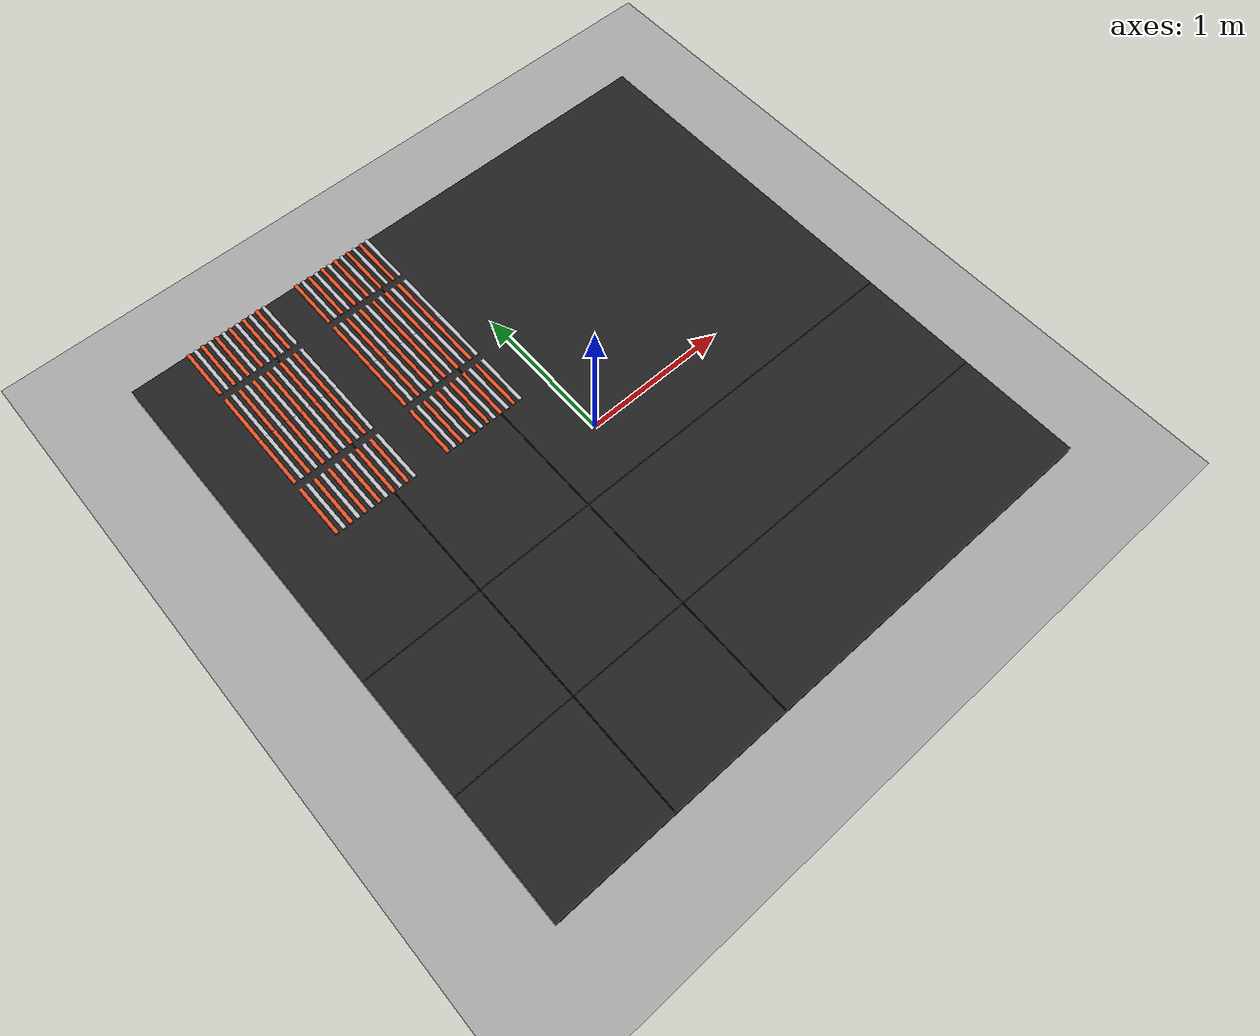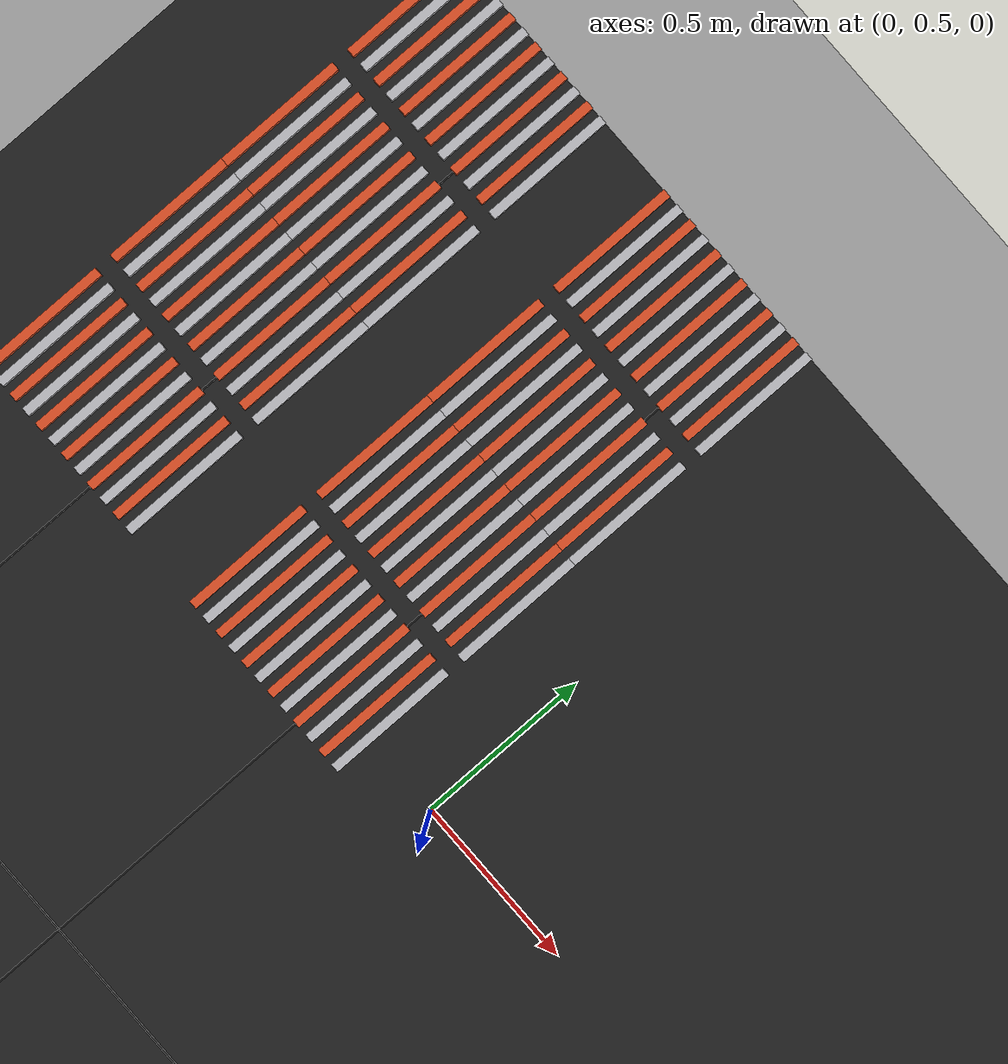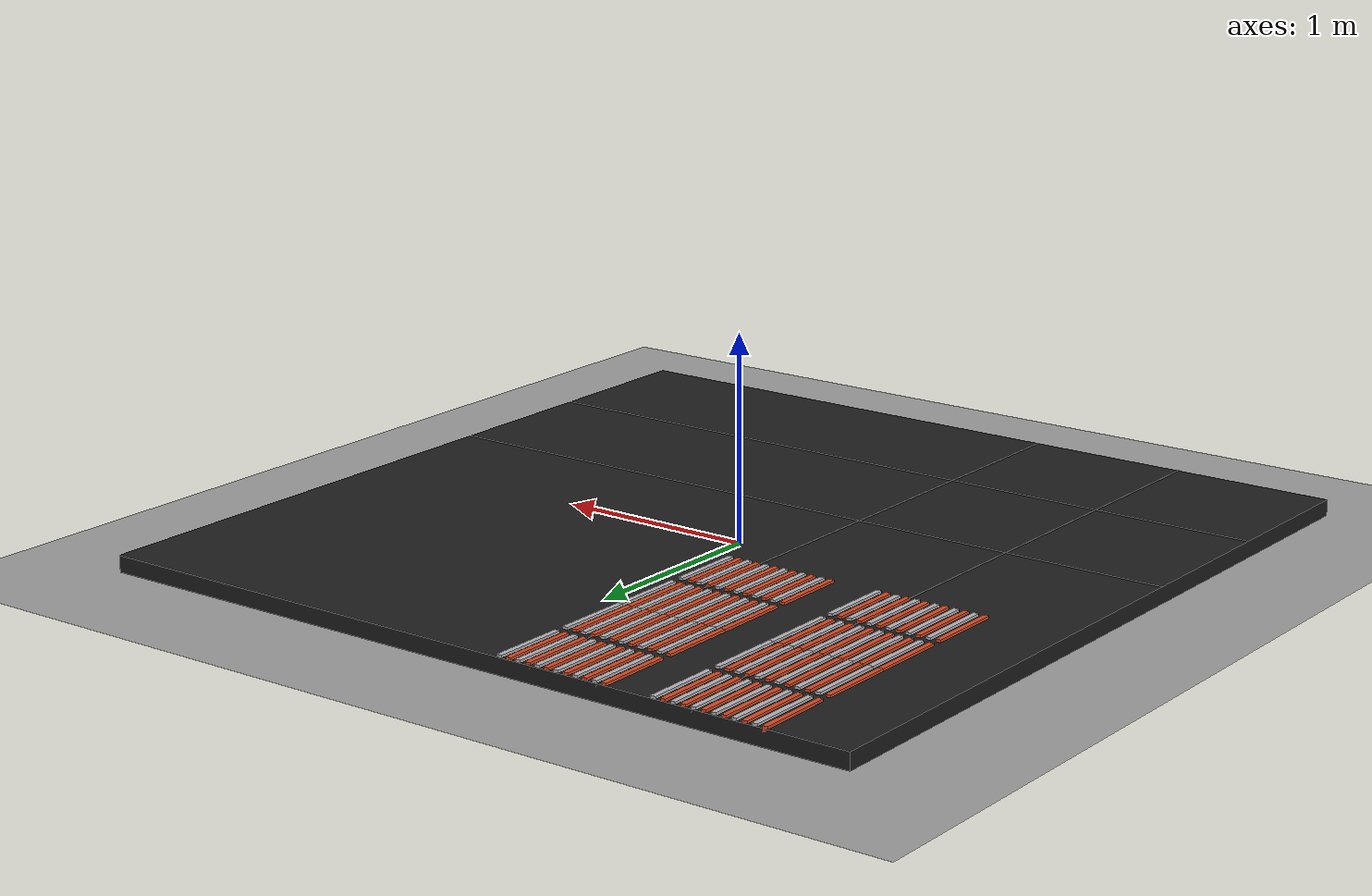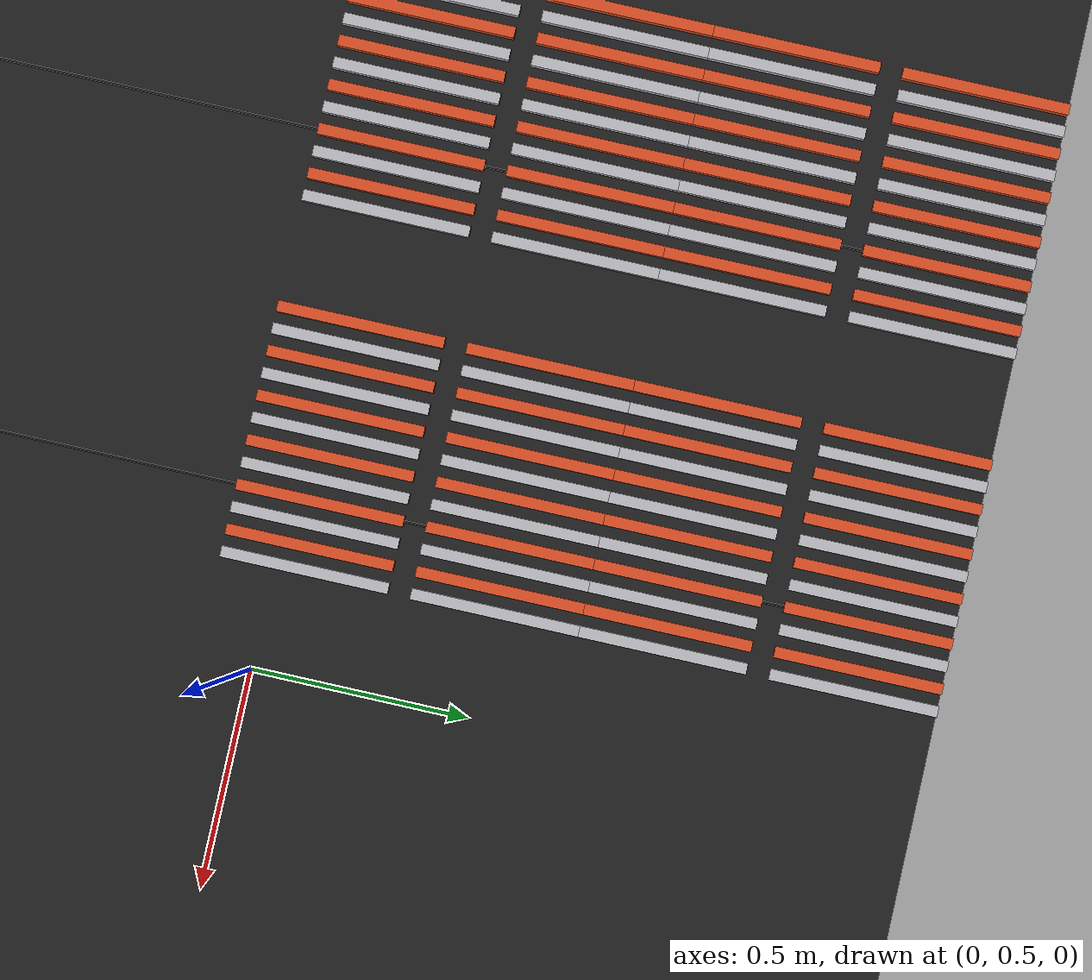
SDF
<sdf version="1.9">
 <world name="electrolysis_correct_layout">
  <model name="ground_plane">
   <static>true</static>
   <link name="link">
    <collision name="collision">
     <geometry><plane><normal>0 0 1</normal><size>20 20</size></plane></geometry>
    </collision>
    <visual name="visual">
     <geometry><plane><normal>0 0 1</normal><size>20 20</size></plane></geometry>
     <material><ambient>0.62 0.62 0.62 1</ambient><diffuse>0.62 0.62 0.62 1</diffuse></material>
    </visual>
   </link>
  </model>
  <model name="polygon_platform">
   <static>true</static>
   <pose>0.0000 0.0000 0.0400 0 0 0</pose>
   <link name="link">
    <collision name="collision"><geometry><box><size>4.0000 4.0000 0.0800</size></box></geometry></collision>
    <visual name="visual">
     <geometry><box><size>4.0000 4.0000 0.0800</size></box></geometry>
     <material><ambient>0.12 0.12 0.12 1</ambient><diffuse>0.12 0.12 0.12 1</diffuse></material>
    </visual>
   </link>
  </model>
  <model name="grid_vertical_1">
   <static>true</static>
   <pose>-1.2000 0.0000 0.0810 0 0 0</pose>
   <link name="link">
    <collision name="collision"><geometry><box><size>0.0060 4.0000 0.0020</size></box></geometry></collision>
    <visual name="visual">
     <geometry><box><size>0.0060 4.0000 0.0020</size></box></geometry>
     <material><ambient>0.07 0.07 0.07 1</ambient><diffuse>0.07 0.07 0.07 1</diffuse></material>
    </visual>
   </link>
  </model>
  <model name="grid_horizontal_1">
   <static>true</static>
   <pose>0.0000 -1.2000 0.0810 0 0 0</pose>
   <link name="link">
    <collision name="collision"><geometry><box><size>4.0000 0.0060 0.0020</size></box></geometry></collision>
    <visual name="visual">
     <geometry><box><size>4.0000 0.0060 0.0020</size></box></geometry>
     <material><ambient>0.07 0.07 0.07 1</ambient><diffuse>0.07 0.07 0.07 1</diffuse></material>
    </visual>
   </link>
  </model>
  <model name="grid_vertical_2">
   <static>true</static>
   <pose>-0.4000 0.0000 0.0810 0 0 0</pose>
   <link name="link">
    <collision name="collision"><geometry><box><size>0.0060 4.0000 0.0020</size></box></geometry></collision>
    <visual name="visual">
     <geometry><box><size>0.0060 4.0000 0.0020</size></box></geometry>
     <material><ambient>0.07 0.07 0.07 1</ambient><diffuse>0.07 0.07 0.07 1</diffuse></material>
    </visual>
   </link>
  </model>
  <model name="grid_horizontal_2">
   <static>true</static>
   <pose>0.0000 -0.4000 0.0810 0 0 0</pose>
   <link name="link">
    <collision name="collision"><geometry><box><size>4.0000 0.0060 0.0020</size></box></geometry></collision>
    <visual name="visual">
     <geometry><box><size>4.0000 0.0060 0.0020</size></box></geometry>
     <material><ambient>0.07 0.07 0.07 1</ambient><diffuse>0.07 0.07 0.07 1</diffuse></material>
    </visual>
   </link>
  </model>
  <model name="left_bath_01_anode_01">
   <static>true</static>
   <pose>-1.6000 0.5875 0.0800 0 0 0</pose>
   <link name="link">
    <collision name="collision"><geometry><box><size>0.0250 0.3750 0.0250</size></box></geometry></collision>
    <visual name="visual">
     <geometry><box><size>0.0250 0.3750 0.0250</size></box></geometry>
     <material><ambient>0.85 0.30 0.14 1</ambient><diffuse>0.85 0.30 0.14 1</diffuse></material>
    </visual>
   </link>
  </model>
  <model name="left_bath_01_cathode_02">
   <static>true</static>
   <pose>-1.5500 0.5875 0.0800 0 0 0</pose>
   <link name="link">
    <collision name="collision"><geometry><box><size>0.0250 0.3750 0.0250</size></box></geometry></collision>
    <visual name="visual">
     <geometry><box><size>0.0250 0.3750 0.0250</size></box></geometry>
     <material><ambient>0.72 0.72 0.74 1</ambient><diffuse>0.72 0.72 0.74 1</diffuse></material>
    </visual>
   </link>
  </model>
  <model name="left_bath_01_anode_03">
   <static>true</static>
   <pose>-1.5000 0.5875 0.0800 0 0 0</pose>
   <link name="link">
    <collision name="collision"><geometry><box><size>0.0250 0.3750 0.0250</size></box></geometry></collision>
    <visual name="visual">
     <geometry><box><size>0.0250 0.3750 0.0250</size></box></geometry>
     <material><ambient>0.85 0.30 0.14 1</ambient><diffuse>0.85 0.30 0.14 1</diffuse></material>
    </visual>
   </link>
  </model>
  <model name="left_bath_01_cathode_04">
   <static>true</static>
   <pose>-1.4500 0.5875 0.0800 0 0 0</pose>
   <link name="link">
    <collision name="collision"><geometry><box><size>0.0250 0.3750 0.0250</size></box></geometry></collision>
    <visual name="visual">
     <geometry><box><size>0.0250 0.3750 0.0250</size></box></geometry>
     <material><ambient>0.72 0.72 0.74 1</ambient><diffuse>0.72 0.72 0.74 1</diffuse></material>
    </visual>
   </link>
  </model>
  <model name="left_bath_01_anode_05">
   <static>true</static>
   <pose>-1.4000 0.5875 0.0800 0 0 0</pose>
   <link name="link">
    <collision name="collision"><geometry><box><size>0.0250 0.3750 0.0250</size></box></geometry></collision>
    <visual name="visual">
     <geometry><box><size>0.0250 0.3750 0.0250</size></box></geometry>
     <material><ambient>0.85 0.30 0.14 1</ambient><diffuse>0.85 0.30 0.14 1</diffuse></material>
    </visual>
   </link>
  </model>
  <model name="left_bath_01_cathode_06">
   <static>true</static>
   <pose>-1.3500 0.5875 0.0800 0 0 0</pose>
   <link name="link">
    <collision name="collision"><geometry><box><size>0.0250 0.3750 0.0250</size></box></geometry></collision>
    <visual name="visual">
     <geometry><box><size>0.0250 0.3750 0.0250</size></box></geometry>
     <material><ambient>0.72 0.72 0.74 1</ambient><diffuse>0.72 0.72 0.74 1</diffuse></material>
    </visual>
   </link>
  </model>
  <model name="left_bath_01_anode_07">
   <static>true</static>
   <pose>-1.3000 0.5875 0.0800 0 0 0</pose>
   <link name="link">
    <collision name="collision"><geometry><box><size>0.0250 0.3750 0.0250</size></box></geometry></collision>
    <visual name="visual">
     <geometry><box><size>0.0250 0.3750 0.0250</size></box></geometry>
     <material><ambient>0.85 0.30 0.14 1</ambient><diffuse>0.85 0.30 0.14 1</diffuse></material>
    </visual>
   </link>
  </model>
  <model name="left_bath_01_cathode_08">
   <static>true</static>
   <pose>-1.2500 0.5875 0.0800 0 0 0</pose>
   <link name="link">
    <collision name="collision"><geometry><box><size>0.0250 0.3750 0.0250</size></box></geometry></collision>
    <visual name="visual">
     <geometry><box><size>0.0250 0.3750 0.0250</size></box></geometry>
     <material><ambient>0.72 0.72 0.74 1</ambient><diffuse>0.72 0.72 0.74 1</diffuse></material>
    </visual>
   </link>
  </model>
  <model name="left_bath_01_anode_09">
   <static>true</static>
   <pose>-1.2000 0.5875 0.0800 0 0 0</pose>
   <link name="link">
    <collision name="collision"><geometry><box><size>0.0250 0.3750 0.0250</size></box></geometry></collision>
    <visual name="visual">
     <geometry><box><size>0.0250 0.3750 0.0250</size></box></geometry>
     <material><ambient>0.85 0.30 0.14 1</ambient><diffuse>0.85 0.30 0.14 1</diffuse></material>
    </visual>
   </link>
  </model>
  <model name="left_bath_01_cathode_10">
   <static>true</static>
   <pose>-1.1500 0.5875 0.0800 0 0 0</pose>
   <link name="link">
    <collision name="collision"><geometry><box><size>0.0250 0.3750 0.0250</size></box></geometry></collision>
    <visual name="visual">
     <geometry><box><size>0.0250 0.3750 0.0250</size></box></geometry>
     <material><ambient>0.72 0.72 0.74 1</ambient><diffuse>0.72 0.72 0.74 1</diffuse></material>
    </visual>
   </link>
  </model>
  <model name="left_bath_01_anode_11">
   <static>true</static>
   <pose>-1.1000 0.5875 0.0800 0 0 0</pose>
   <link name="link">
    <collision name="collision"><geometry><box><size>0.0250 0.3750 0.0250</size></box></geometry></collision>
    <visual name="visual">
     <geometry><box><size>0.0250 0.3750 0.0250</size></box></geometry>
     <material><ambient>0.85 0.30 0.14 1</ambient><diffuse>0.85 0.30 0.14 1</diffuse></material>
    </visual>
   </link>
  </model>
  <model name="left_bath_01_cathode_12">
   <static>true</static>
   <pose>-1.0500 0.5875 0.0800 0 0 0</pose>
   <link name="link">
    <collision name="collision"><geometry><box><size>0.0250 0.3750 0.0250</size></box></geometry></collision>
    <visual name="visual">
     <geometry><box><size>0.0250 0.3750 0.0250</size></box></geometry>
     <material><ambient>0.72 0.72 0.74 1</ambient><diffuse>0.72 0.72 0.74 1</diffuse></material>
    </visual>
   </link>
  </model>
  <model name="left_bath_02_anode_01">
   <static>true</static>
   <pose>-1.6000 1.0125 0.0800 0 0 0</pose>
   <link name="link">
    <collision name="collision"><geometry><box><size>0.0250 0.3750 0.0250</size></box></geometry></collision>
    <visual name="visual">
     <geometry><box><size>0.0250 0.3750 0.0250</size></box></geometry>
     <material><ambient>0.85 0.30 0.14 1</ambient><diffuse>0.85 0.30 0.14 1</diffuse></material>
    </visual>
   </link>
  </model>
  <model name="left_bath_02_cathode_02">
   <static>true</static>
   <pose>-1.5500 1.0125 0.0800 0 0 0</pose>
   <link name="link">
    <collision name="collision"><geometry><box><size>0.0250 0.3750 0.0250</size></box></geometry></collision>
    <visual name="visual">
     <geometry><box><size>0.0250 0.3750 0.0250</size></box></geometry>
     <material><ambient>0.72 0.72 0.74 1</ambient><diffuse>0.72 0.72 0.74 1</diffuse></material>
    </visual>
   </link>
  </model>
  <model name="left_bath_02_anode_03">
   <static>true</static>
   <pose>-1.5000 1.0125 0.0800 0 0 0</pose>
   <link name="link">
    <collision name="collision"><geometry><box><size>0.0250 0.3750 0.0250</size></box></geometry></collision>
    <visual name="visual">
     <geometry><box><size>0.0250 0.3750 0.0250</size></box></geometry>
     <material><ambient>0.85 0.30 0.14 1</ambient><diffuse>0.85 0.30 0.14 1</diffuse></material>
    </visual>
   </link>
  </model>
  <model name="left_bath_02_cathode_04">
   <static>true</static>
   <pose>-1.4500 1.0125 0.0800 0 0 0</pose>
   <link name="link">
    <collision name="collision"><geometry><box><size>0.0250 0.3750 0.0250</size></box></geometry></collision>
    <visual name="visual">
     <geometry><box><size>0.0250 0.3750 0.0250</size></box></geometry>
     <material><ambient>0.72 0.72 0.74 1</ambient><diffuse>0.72 0.72 0.74 1</diffuse></material>
    </visual>
   </link>
  </model>
  <model name="left_bath_02_anode_05">
   <static>true</static>
   <pose>-1.4000 1.0125 0.0800 0 0 0</pose>
   <link name="link">
    <collision name="collision"><geometry><box><size>0.0250 0.3750 0.0250</size></box></geometry></collision>
    <visual name="visual">
     <geometry><box><size>0.0250 0.3750 0.0250</size></box></geometry>
     <material><ambient>0.85 0.30 0.14 1</ambient><diffuse>0.85 0.30 0.14 1</diffuse></material>
    </visual>
   </link>
  </model>
  <model name="left_bath_02_cathode_06">
   <static>true</static>
   <pose>-1.3500 1.0125 0.0800 0 0 0</pose>
   <link name="link">
    <collision name="collision"><geometry><box><size>0.0250 0.3750 0.0250</size></box></geometry></collision>
    <visual name="visual">
     <geometry><box><size>0.0250 0.3750 0.0250</size></box></geometry>
     <material><ambient>0.72 0.72 0.74 1</ambient><diffuse>0.72 0.72 0.74 1</diffuse></material>
    </visual>
   </link>
  </model>
  <model name="left_bath_02_anode_07">
   <static>true</static>
   <pose>-1.3000 1.0125 0.0800 0 0 0</pose>
   <link name="link">
    <collision name="collision"><geometry><box><size>0.0250 0.3750 0.0250</size></box></geometry></collision>
    <visual name="visual">
     <geometry><box><size>0.0250 0.3750 0.0250</size></box></geometry>
     <material><ambient>0.85 0.30 0.14 1</ambient><diffuse>0.85 0.30 0.14 1</diffuse></material>
    </visual>
   </link>
  </model>
  <model name="left_bath_02_cathode_08">
   <static>true</static>
   <pose>-1.2500 1.0125 0.0800 0 0 0</pose>
   <link name="link">
    <collision name="collision"><geometry><box><size>0.0250 0.3750 0.0250</size></box></geometry></collision>
    <visual name="visual">
     <geometry><box><size>0.0250 0.3750 0.0250</size></box></geometry>
     <material><ambient>0.72 0.72 0.74 1</ambient><diffuse>0.72 0.72 0.74 1</diffuse></material>
    </visual>
   </link>
  </model>
  <model name="left_bath_02_anode_09">
   <static>true</static>
   <pose>-1.2000 1.0125 0.0800 0 0 0</pose>
   <link name="link">
    <collision name="collision"><geometry><box><size>0.0250 0.3750 0.0250</size></box></geometry></collision>
    <visual name="visual">
     <geometry><box><size>0.0250 0.3750 0.0250</size></box></geometry>
     <material><ambient>0.85 0.30 0.14 1</ambient><diffuse>0.85 0.30 0.14 1</diffuse></material>
    </visual>
   </link>
  </model>
  <model name="left_bath_02_cathode_10">
   <static>true</static>
   <pose>-1.1500 1.0125 0.0800 0 0 0</pose>
   <link name="link">
    <collision name="collision"><geometry><box><size>0.0250 0.3750 0.0250</size></box></geometry></collision>
    <visual name="visual">
     <geometry><box><size>0.0250 0.3750 0.0250</size></box></geometry>
     <material><ambient>0.72 0.72 0.74 1</ambient><diffuse>0.72 0.72 0.74 1</diffuse></material>
    </visual>
   </link>
  </model>
  <model name="left_bath_02_anode_11">
   <static>true</static>
   <pose>-1.1000 1.0125 0.0800 0 0 0</pose>
   <link name="link">
    <collision name="collision"><geometry><box><size>0.0250 0.3750 0.0250</size></box></geometry></collision>
    <visual name="visual">
     <geometry><box><size>0.0250 0.3750 0.0250</size></box></geometry>
     <material><ambient>0.85 0.30 0.14 1</ambient><diffuse>0.85 0.30 0.14 1</diffuse></material>
    </visual>
   </link>
  </model>
  <model name="left_bath_02_cathode_12">
   <static>true</static>
   <pose>-1.0500 1.0125 0.0800 0 0 0</pose>
   <link name="link">
    <collision name="collision"><geometry><box><size>0.0250 0.3750 0.0250</size></box></geometry></collision>
    <visual name="visual">
     <geometry><box><size>0.0250 0.3750 0.0250</size></box></geometry>
     <material><ambient>0.72 0.72 0.74 1</ambient><diffuse>0.72 0.72 0.74 1</diffuse></material>
    </visual>
   </link>
  </model>
  <model name="left_bath_03_anode_01">
   <static>true</static>
   <pose>-0.8000 0.5875 0.0800 0 0 0</pose>
   <link name="link">
    <collision name="collision"><geometry><box><size>0.0250 0.3750 0.0250</size></box></geometry></collision>
    <visual name="visual">
     <geometry><box><size>0.0250 0.3750 0.0250</size></box></geometry>
     <material><ambient>0.85 0.30 0.14 1</ambient><diffuse>0.85 0.30 0.14 1</diffuse></material>
    </visual>
   </link>
  </model>
  <model name="left_bath_03_cathode_02">
   <static>true</static>
   <pose>-0.7500 0.5875 0.0800 0 0 0</pose>
   <link name="link">
    <collision name="collision"><geometry><box><size>0.0250 0.3750 0.0250</size></box></geometry></collision>
    <visual name="visual">
     <geometry><box><size>0.0250 0.3750 0.0250</size></box></geometry>
     <material><ambient>0.72 0.72 0.74 1</ambient><diffuse>0.72 0.72 0.74 1</diffuse></material>
    </visual>
   </link>
  </model>
  <model name="left_bath_03_anode_03">
   <static>true</static>
   <pose>-0.7000 0.5875 0.0800 0 0 0</pose>
   <link name="link">
    <collision name="collision"><geometry><box><size>0.0250 0.3750 0.0250</size></box></geometry></collision>
    <visual name="visual">
     <geometry><box><size>0.0250 0.3750 0.0250</size></box></geometry>
     <material><ambient>0.85 0.30 0.14 1</ambient><diffuse>0.85 0.30 0.14 1</diffuse></material>
    </visual>
   </link>
  </model>
  <model name="left_bath_03_cathode_04">
   <static>true</static>
   <pose>-0.6500 0.5875 0.0800 0 0 0</pose>
   <link name="link">
    <collision name="collision"><geometry><box><size>0.0250 0.3750 0.0250</size></box></geometry></collision>
    <visual name="visual">
     <geometry><box><size>0.0250 0.3750 0.0250</size></box></geometry>
     <material><ambient>0.72 0.72 0.74 1</ambient><diffuse>0.72 0.72 0.74 1</diffuse></material>
    </visual>
   </link>
  </model>
  <model name="left_bath_03_anode_05">
   <static>true</static>
   <pose>-0.6000 0.5875 0.0800 0 0 0</pose>
   <link name="link">
    <collision name="collision"><geometry><box><size>0.0250 0.3750 0.0250</size></box></geometry></collision>
    <visual name="visual">
     <geometry><box><size>0.0250 0.3750 0.0250</size></box></geometry>
     <material><ambient>0.85 0.30 0.14 1</ambient><diffuse>0.85 0.30 0.14 1</diffuse></material>
    </visual>
   </link>
  </model>
  <model name="left_bath_03_cathode_06">
   <static>true</static>
   <pose>-0.5500 0.5875 0.0800 0 0 0</pose>
   <link name="link">
    <collision name="collision"><geometry><box><size>0.0250 0.3750 0.0250</size></box></geometry></collision>
    <visual name="visual">
     <geometry><box><size>0.0250 0.3750 0.0250</size></box></geometry>
     <material><ambient>0.72 0.72 0.74 1</ambient><diffuse>0.72 0.72 0.74 1</diffuse></material>
    </visual>
   </link>
  </model>
  <model name="left_bath_03_anode_07">
   <static>true</static>
   <pose>-0.5000 0.5875 0.0800 0 0 0</pose>
   <link name="link">
    <collision name="collision"><geometry><box><size>0.0250 0.3750 0.0250</size></box></geometry></collision>
    <visual name="visual">
     <geometry><box><size>0.0250 0.3750 0.0250</size></box></geometry>
     <material><ambient>0.85 0.30 0.14 1</ambient><diffuse>0.85 0.30 0.14 1</diffuse></material>
    </visual>
   </link>
  </model>
  <model name="left_bath_03_cathode_08">
   <static>true</static>
   <pose>-0.4500 0.5875 0.0800 0 0 0</pose>
   <link name="link">
    <collision name="collision"><geometry><box><size>0.0250 0.3750 0.0250</size></box></geometry></collision>
    <visual name="visual">
     <geometry><box><size>0.0250 0.3750 0.0250</size></box></geometry>
     <material><ambient>0.72 0.72 0.74 1</ambient><diffuse>0.72 0.72 0.74 1</diffuse></material>
    </visual>
   </link>
  </model>
  <model name="left_bath_03_anode_09">
   <static>true</static>
   <pose>-0.4000 0.5875 0.0800 0 0 0</pose>
   <link name="link">
    <collision name="collision"><geometry><box><size>0.0250 0.3750 0.0250</size></box></geometry></collision>
    <visual name="visual">
     <geometry><box><size>0.0250 0.3750 0.0250</size></box></geometry>
     <material><ambient>0.85 0.30 0.14 1</ambient><diffuse>0.85 0.30 0.14 1</diffuse></material>
    </visual>
   </link>
  </model>
  <model name="left_bath_03_cathode_10">
   <static>true</static>
   <pose>-0.3500 0.5875 0.0800 0 0 0</pose>
   <link name="link">
    <collision name="collision"><geometry><box><size>0.0250 0.3750 0.0250</size></box></geometry></collision>
    <visual name="visual">
     <geometry><box><size>0.0250 0.3750 0.0250</size></box></geometry>
     <material><ambient>0.72 0.72 0.74 1</ambient><diffuse>0.72 0.72 0.74 1</diffuse></material>
    </visual>
   </link>
  </model>
  <model name="left_bath_03_anode_11">
   <static>true</static>
   <pose>-0.3000 0.5875 0.0800 0 0 0</pose>
   <link name="link">
    <collision name="collision"><geometry><box><size>0.0250 0.3750 0.0250</size></box></geometry></collision>
    <visual name="visual">
     <geometry><box><size>0.0250 0.3750 0.0250</size></box></geometry>
     <material><ambient>0.85 0.30 0.14 1</ambient><diffuse>0.85 0.30 0.14 1</diffuse></material>
    </visual>
   </link>
  </model>
  <model name="left_bath_03_cathode_12">
   <static>true</static>
   <pose>-0.2500 0.5875 0.0800 0 0 0</pose>
   <link name="link">
    <collision name="collision"><geometry><box><size>0.0250 0.3750 0.0250</size></box></geometry></collision>
    <visual name="visual">
     <geometry><box><size>0.0250 0.3750 0.0250</size></box></geometry>
     <material><ambient>0.72 0.72 0.74 1</ambient><diffuse>0.72 0.72 0.74 1</diffuse></material>
    </visual>
   </link>
  </model>
  <model name="left_bath_04_anode_01">
   <static>true</static>
   <pose>-0.8000 1.0125 0.0800 0 0 0</pose>
   <link name="link">
    <collision name="collision"><geometry><box><size>0.0250 0.3750 0.0250</size></box></geometry></collision>
    <visual name="visual">
     <geometry><box><size>0.0250 0.3750 0.0250</size></box></geometry>
     <material><ambient>0.85 0.30 0.14 1</ambient><diffuse>0.85 0.30 0.14 1</diffuse></material>
    </visual>
   </link>
  </model>
  <model name="left_bath_04_cathode_02">
   <static>true</static>
   <pose>-0.7500 1.0125 0.0800 0 0 0</pose>
   <link name="link">
    <collision name="collision"><geometry><box><size>0.0250 0.3750 0.0250</size></box></geometry></collision>
    <visual name="visual">
     <geometry><box><size>0.0250 0.3750 0.0250</size></box></geometry>
     <material><ambient>0.72 0.72 0.74 1</ambient><diffuse>0.72 0.72 0.74 1</diffuse></material>
    </visual>
   </link>
  </model>
  <model name="left_bath_04_anode_03">
   <static>true</static>
   <pose>-0.7000 1.0125 0.0800 0 0 0</pose>
   <link name="link">
    <collision name="collision"><geometry><box><size>0.0250 0.3750 0.0250</size></box></geometry></collision>
    <visual name="visual">
     <geometry><box><size>0.0250 0.3750 0.0250</size></box></geometry>
     <material><ambient>0.85 0.30 0.14 1</ambient><diffuse>0.85 0.30 0.14 1</diffuse></material>
    </visual>
   </link>
  </model>
  <model name="left_bath_04_cathode_04">
   <static>true</static>
   <pose>-0.6500 1.0125 0.0800 0 0 0</pose>
   <link name="link">
    <collision name="collision"><geometry><box><size>0.0250 0.3750 0.0250</size></box></geometry></collision>
    <visual name="visual">
     <geometry><box><size>0.0250 0.3750 0.0250</size></box></geometry>
     <material><ambient>0.72 0.72 0.74 1</ambient><diffuse>0.72 0.72 0.74 1</diffuse></material>
    </visual>
   </link>
  </model>
  <model name="left_bath_04_anode_05">
   <static>true</static>
   <pose>-0.6000 1.0125 0.0800 0 0 0</pose>
   <link name="link">
    <collision name="collision"><geometry><box><size>0.0250 0.3750 0.0250</size></box></geometry></collision>
    <visual name="visual">
     <geometry><box><size>0.0250 0.3750 0.0250</size></box></geometry>
     <material><ambient>0.85 0.30 0.14 1</ambient><diffuse>0.85 0.30 0.14 1</diffuse></material>
    </visual>
   </link>
  </model>
  <model name="left_bath_04_cathode_06">
   <static>true</static>
   <pose>-0.5500 1.0125 0.0800 0 0 0</pose>
   <link name="link">
    <collision name="collision"><geometry><box><size>0.0250 0.3750 0.0250</size></box></geometry></collision>
    <visual name="visual">
     <geometry><box><size>0.0250 0.3750 0.0250</size></box></geometry>
     <material><ambient>0.72 0.72 0.74 1</ambient><diffuse>0.72 0.72 0.74 1</diffuse></material>
    </visual>
   </link>
  </model>
  <model name="left_bath_04_anode_07">
   <static>true</static>
   <pose>-0.5000 1.0125 0.0800 0 0 0</pose>
   <link name="link">
    <collision name="collision"><geometry><box><size>0.0250 0.3750 0.0250</size></box></geometry></collision>
    <visual name="visual">
     <geometry><box><size>0.0250 0.3750 0.0250</size></box></geometry>
     <material><ambient>0.85 0.30 0.14 1</ambient><diffuse>0.85 0.30 0.14 1</diffuse></material>
    </visual>
   </link>
  </model>
  <model name="left_bath_04_cathode_08">
   <static>true</static>
   <pose>-0.4500 1.0125 0.0800 0 0 0</pose>
   <link name="link">
    <collision name="collision"><geometry><box><size>0.0250 0.3750 0.0250</size></box></geometry></collision>
    <visual name="visual">
     <geometry><box><size>0.0250 0.3750 0.0250</size></box></geometry>
     <material><ambient>0.72 0.72 0.74 1</ambient><diffuse>0.72 0.72 0.74 1</diffuse></material>
    </visual>
   </link>
  </model>
  <model name="left_bath_04_anode_09">
   <static>true</static>
   <pose>-0.4000 1.0125 0.0800 0 0 0</pose>
   <link name="link">
    <collision name="collision"><geometry><box><size>0.0250 0.3750 0.0250</size></box></geometry></collision>
    <visual name="visual">
     <geometry><box><size>0.0250 0.3750 0.0250</size></box></geometry>
     <material><ambient>0.85 0.30 0.14 1</ambient><diffuse>0.85 0.30 0.14 1</diffuse></material>
    </visual>
   </link>
  </model>
  <model name="left_bath_04_cathode_10">
   <static>true</static>
   <pose>-0.3500 1.0125 0.0800 0 0 0</pose>
   <link name="link">
    <collision name="collision"><geometry><box><size>0.0250 0.3750 0.0250</size></box></geometry></collision>
    <visual name="visual">
     <geometry><box><size>0.0250 0.3750 0.0250</size></box></geometry>
     <material><ambient>0.72 0.72 0.74 1</ambient><diffuse>0.72 0.72 0.74 1</diffuse></material>
    </visual>
   </link>
  </model>
  <model name="left_bath_04_anode_11">
   <static>true</static>
   <pose>-0.3000 1.0125 0.0800 0 0 0</pose>
   <link name="link">
    <collision name="collision"><geometry><box><size>0.0250 0.3750 0.0250</size></box></geometry></collision>
    <visual name="visual">
     <geometry><box><size>0.0250 0.3750 0.0250</size></box></geometry>
     <material><ambient>0.85 0.30 0.14 1</ambient><diffuse>0.85 0.30 0.14 1</diffuse></material>
    </visual>
   </link>
  </model>
  <model name="left_bath_04_cathode_12">
   <static>true</static>
   <pose>-0.2500 1.0125 0.0800 0 0 0</pose>
   <link name="link">
    <collision name="collision"><geometry><box><size>0.0250 0.3750 0.0250</size></box></geometry></collision>
    <visual name="visual">
     <geometry><box><size>0.0250 0.3750 0.0250</size></box></geometry>
     <material><ambient>0.72 0.72 0.74 1</ambient><diffuse>0.72 0.72 0.74 1</diffuse></material>
    </visual>
   </link>
  </model>
  <model name="left_bath_05_anode_01">
   <static>true</static>
   <pose>-1.6000 1.3875 0.0800 0 0 0</pose>
   <link name="link">
    <collision name="collision"><geometry><box><size>0.0250 0.3750 0.0250</size></box></geometry></collision>
    <visual name="visual">
     <geometry><box><size>0.0250 0.3750 0.0250</size></box></geometry>
     <material><ambient>0.85 0.30 0.14 1</ambient><diffuse>0.85 0.30 0.14 1</diffuse></material>
    </visual>
   </link>
  </model>
  <model name="left_bath_05_cathode_02">
   <static>true</static>
   <pose>-1.5500 1.3875 0.0800 0 0 0</pose>
   <link name="link">
    <collision name="collision"><geometry><box><size>0.0250 0.3750 0.0250</size></box></geometry></collision>
    <visual name="visual">
     <geometry><box><size>0.0250 0.3750 0.0250</size></box></geometry>
     <material><ambient>0.72 0.72 0.74 1</ambient><diffuse>0.72 0.72 0.74 1</diffuse></material>
    </visual>
   </link>
  </model>
  <model name="left_bath_05_anode_03">
   <static>true</static>
   <pose>-1.5000 1.3875 0.0800 0 0 0</pose>
   <link name="link">
    <collision name="collision"><geometry><box><size>0.0250 0.3750 0.0250</size></box></geometry></collision>
    <visual name="visual">
     <geometry><box><size>0.0250 0.3750 0.0250</size></box></geometry>
     <material><ambient>0.85 0.30 0.14 1</ambient><diffuse>0.85 0.30 0.14 1</diffuse></material>
    </visual>
   </link>
  </model>
  <model name="left_bath_05_cathode_04">
   <static>true</static>
   <pose>-1.4500 1.3875 0.0800 0 0 0</pose>
   <link name="link">
    <collision name="collision"><geometry><box><size>0.0250 0.3750 0.0250</size></box></geometry></collision>
    <visual name="visual">
     <geometry><box><size>0.0250 0.3750 0.0250</size></box></geometry>
     <material><ambient>0.72 0.72 0.74 1</ambient><diffuse>0.72 0.72 0.74 1</diffuse></material>
    </visual>
   </link>
  </model>
  <model name="left_bath_05_anode_05">
   <static>true</static>
   <pose>-1.4000 1.3875 0.0800 0 0 0</pose>
   <link name="link">
    <collision name="collision"><geometry><box><size>0.0250 0.3750 0.0250</size></box></geometry></collision>
    <visual name="visual">
     <geometry><box><size>0.0250 0.3750 0.0250</size></box></geometry>
     <material><ambient>0.85 0.30 0.14 1</ambient><diffuse>0.85 0.30 0.14 1</diffuse></material>
    </visual>
   </link>
  </model>
  <model name="left_bath_05_cathode_06">
   <static>true</static>
   <pose>-1.3500 1.3875 0.0800 0 0 0</pose>
   <link name="link">
    <collision name="collision"><geometry><box><size>0.0250 0.3750 0.0250</size></box></geometry></collision>
    <visual name="visual">
     <geometry><box><size>0.0250 0.3750 0.0250</size></box></geometry>
     <material><ambient>0.72 0.72 0.74 1</ambient><diffuse>0.72 0.72 0.74 1</diffuse></material>
    </visual>
   </link>
  </model>
  <model name="left_bath_05_anode_07">
   <static>true</static>
   <pose>-1.3000 1.3875 0.0800 0 0 0</pose>
   <link name="link">
    <collision name="collision"><geometry><box><size>0.0250 0.3750 0.0250</size></box></geometry></collision>
    <visual name="visual">
     <geometry><box><size>0.0250 0.3750 0.0250</size></box></geometry>
     <material><ambient>0.85 0.30 0.14 1</ambient><diffuse>0.85 0.30 0.14 1</diffuse></material>
    </visual>
   </link>
  </model>
  <model name="left_bath_05_cathode_08">
   <static>true</static>
   <pose>-1.2500 1.3875 0.0800 0 0 0</pose>
   <link name="link">
    <collision name="collision"><geometry><box><size>0.0250 0.3750 0.0250</size></box></geometry></collision>
    <visual name="visual">
     <geometry><box><size>0.0250 0.3750 0.0250</size></box></geometry>
     <material><ambient>0.72 0.72 0.74 1</ambient><diffuse>0.72 0.72 0.74 1</diffuse></material>
    </visual>
   </link>
  </model>
  <model name="left_bath_05_anode_09">
   <static>true</static>
   <pose>-1.2000 1.3875 0.0800 0 0 0</pose>
   <link name="link">
    <collision name="collision"><geometry><box><size>0.0250 0.3750 0.0250</size></box></geometry></collision>
    <visual name="visual">
     <geometry><box><size>0.0250 0.3750 0.0250</size></box></geometry>
     <material><ambient>0.85 0.30 0.14 1</ambient><diffuse>0.85 0.30 0.14 1</diffuse></material>
    </visual>
   </link>
  </model>
  <model name="left_bath_05_cathode_10">
   <static>true</static>
   <pose>-1.1500 1.3875 0.0800 0 0 0</pose>
   <link name="link">
    <collision name="collision"><geometry><box><size>0.0250 0.3750 0.0250</size></box></geometry></collision>
    <visual name="visual">
     <geometry><box><size>0.0250 0.3750 0.0250</size></box></geometry>
     <material><ambient>0.72 0.72 0.74 1</ambient><diffuse>0.72 0.72 0.74 1</diffuse></material>
    </visual>
   </link>
  </model>
  <model name="left_bath_05_anode_11">
   <static>true</static>
   <pose>-1.1000 1.3875 0.0800 0 0 0</pose>
   <link name="link">
    <collision name="collision"><geometry><box><size>0.0250 0.3750 0.0250</size></box></geometry></collision>
    <visual name="visual">
     <geometry><box><size>0.0250 0.3750 0.0250</size></box></geometry>
     <material><ambient>0.85 0.30 0.14 1</ambient><diffuse>0.85 0.30 0.14 1</diffuse></material>
    </visual>
   </link>
  </model>
  <model name="left_bath_05_cathode_12">
   <static>true</static>
   <pose>-1.0500 1.3875 0.0800 0 0 0</pose>
   <link name="link">
    <collision name="collision"><geometry><box><size>0.0250 0.3750 0.0250</size></box></geometry></collision>
    <visual name="visual">
     <geometry><box><size>0.0250 0.3750 0.0250</size></box></geometry>
     <material><ambient>0.72 0.72 0.74 1</ambient><diffuse>0.72 0.72 0.74 1</diffuse></material>
    </visual>
   </link>
  </model>
  <model name="left_bath_06_anode_01">
   <static>true</static>
   <pose>-1.6000 1.8125 0.0800 0 0 0</pose>
   <link name="link">
    <collision name="collision"><geometry><box><size>0.0250 0.3750 0.0250</size></box></geometry></collision>
    <visual name="visual">
     <geometry><box><size>0.0250 0.3750 0.0250</size></box></geometry>
     <material><ambient>0.85 0.30 0.14 1</ambient><diffuse>0.85 0.30 0.14 1</diffuse></material>
    </visual>
   </link>
  </model>
  <model name="left_bath_06_cathode_02">
   <static>true</static>
   <pose>-1.5500 1.8125 0.0800 0 0 0</pose>
   <link name="link">
    <collision name="collision"><geometry><box><size>0.0250 0.3750 0.0250</size></box></geometry></collision>
    <visual name="visual">
     <geometry><box><size>0.0250 0.3750 0.0250</size></box></geometry>
     <material><ambient>0.72 0.72 0.74 1</ambient><diffuse>0.72 0.72 0.74 1</diffuse></material>
    </visual>
   </link>
  </model>
  <model name="left_bath_06_anode_03">
   <static>true</static>
   <pose>-1.5000 1.8125 0.0800 0 0 0</pose>
   <link name="link">
    <collision name="collision"><geometry><box><size>0.0250 0.3750 0.0250</size></box></geometry></collision>
    <visual name="visual">
     <geometry><box><size>0.0250 0.3750 0.0250</size></box></geometry>
     <material><ambient>0.85 0.30 0.14 1</ambient><diffuse>0.85 0.30 0.14 1</diffuse></material>
    </visual>
   </link>
  </model>
  <model name="left_bath_06_cathode_04">
   <static>true</static>
   <pose>-1.4500 1.8125 0.0800 0 0 0</pose>
   <link name="link">
    <collision name="collision"><geometry><box><size>0.0250 0.3750 0.0250</size></box></geometry></collision>
    <visual name="visual">
     <geometry><box><size>0.0250 0.3750 0.0250</size></box></geometry>
     <material><ambient>0.72 0.72 0.74 1</ambient><diffuse>0.72 0.72 0.74 1</diffuse></material>
    </visual>
   </link>
  </model>
  <model name="left_bath_06_anode_05">
   <static>true</static>
   <pose>-1.4000 1.8125 0.0800 0 0 0</pose>
   <link name="link">
    <collision name="collision"><geometry><box><size>0.0250 0.3750 0.0250</size></box></geometry></collision>
    <visual name="visual">
     <geometry><box><size>0.0250 0.3750 0.0250</size></box></geometry>
     <material><ambient>0.85 0.30 0.14 1</ambient><diffuse>0.85 0.30 0.14 1</diffuse></material>
    </visual>
   </link>
  </model>
  <model name="left_bath_06_cathode_06">
   <static>true</static>
   <pose>-1.3500 1.8125 0.0800 0 0 0</pose>
   <link name="link">
    <collision name="collision"><geometry><box><size>0.0250 0.3750 0.0250</size></box></geometry></collision>
    <visual name="visual">
     <geometry><box><size>0.0250 0.3750 0.0250</size></box></geometry>
     <material><ambient>0.72 0.72 0.74 1</ambient><diffuse>0.72 0.72 0.74 1</diffuse></material>
    </visual>
   </link>
  </model>
  <model name="left_bath_06_anode_07">
   <static>true</static>
   <pose>-1.3000 1.8125 0.0800 0 0 0</pose>
   <link name="link">
    <collision name="collision"><geometry><box><size>0.0250 0.3750 0.0250</size></box></geometry></collision>
    <visual name="visual">
     <geometry><box><size>0.0250 0.3750 0.0250</size></box></geometry>
     <material><ambient>0.85 0.30 0.14 1</ambient><diffuse>0.85 0.30 0.14 1</diffuse></material>
    </visual>
   </link>
  </model>
  <model name="left_bath_06_cathode_08">
   <static>true</static>
   <pose>-1.2500 1.8125 0.0800 0 0 0</pose>
   <link name="link">
    <collision name="collision"><geometry><box><size>0.0250 0.3750 0.0250</size></box></geometry></collision>
    <visual name="visual">
     <geometry><box><size>0.0250 0.3750 0.0250</size></box></geometry>
     <material><ambient>0.72 0.72 0.74 1</ambient><diffuse>0.72 0.72 0.74 1</diffuse></material>
    </visual>
   </link>
  </model>
  <model name="left_bath_06_anode_09">
   <static>true</static>
   <pose>-1.2000 1.8125 0.0800 0 0 0</pose>
   <link name="link">
    <collision name="collision"><geometry><box><size>0.0250 0.3750 0.0250</size></box></geometry></collision>
    <visual name="visual">
     <geometry><box><size>0.0250 0.3750 0.0250</size></box></geometry>
     <material><ambient>0.85 0.30 0.14 1</ambient><diffuse>0.85 0.30 0.14 1</diffuse></material>
    </visual>
   </link>
  </model>
  <model name="left_bath_06_cathode_10">
   <static>true</static>
   <pose>-1.1500 1.8125 0.0800 0 0 0</pose>
   <link name="link">
    <collision name="collision"><geometry><box><size>0.0250 0.3750 0.0250</size></box></geometry></collision>
    <visual name="visual">
     <geometry><box><size>0.0250 0.3750 0.0250</size></box></geometry>
     <material><ambient>0.72 0.72 0.74 1</ambient><diffuse>0.72 0.72 0.74 1</diffuse></material>
    </visual>
   </link>
  </model>
  <model name="left_bath_06_anode_11">
   <static>true</static>
   <pose>-1.1000 1.8125 0.0800 0 0 0</pose>
   <link name="link">
    <collision name="collision"><geometry><box><size>0.0250 0.3750 0.0250</size></box></geometry></collision>
    <visual name="visual">
     <geometry><box><size>0.0250 0.3750 0.0250</size></box></geometry>
     <material><ambient>0.85 0.30 0.14 1</ambient><diffuse>0.85 0.30 0.14 1</diffuse></material>
    </visual>
   </link>
  </model>
  <model name="left_bath_06_cathode_12">
   <static>true</static>
   <pose>-1.0500 1.8125 0.0800 0 0 0</pose>
   <link name="link">
    <collision name="collision"><geometry><box><size>0.0250 0.3750 0.0250</size></box></geometry></collision>
    <visual name="visual">
     <geometry><box><size>0.0250 0.3750 0.0250</size></box></geometry>
     <material><ambient>0.72 0.72 0.74 1</ambient><diffuse>0.72 0.72 0.74 1</diffuse></material>
    </visual>
   </link>
  </model>
  <model name="left_bath_07_anode_01">
   <static>true</static>
   <pose>-0.8000 1.3875 0.0800 0 0 0</pose>
   <link name="link">
    <collision name="collision"><geometry><box><size>0.0250 0.3750 0.0250</size></box></geometry></collision>
    <visual name="visual">
     <geometry><box><size>0.0250 0.3750 0.0250</size></box></geometry>
     <material><ambient>0.85 0.30 0.14 1</ambient><diffuse>0.85 0.30 0.14 1</diffuse></material>
    </visual>
   </link>
  </model>
  <model name="left_bath_07_cathode_02">
   <static>true</static>
   <pose>-0.7500 1.3875 0.0800 0 0 0</pose>
   <link name="link">
    <collision name="collision"><geometry><box><size>0.0250 0.3750 0.0250</size></box></geometry></collision>
    <visual name="visual">
     <geometry><box><size>0.0250 0.3750 0.0250</size></box></geometry>
     <material><ambient>0.72 0.72 0.74 1</ambient><diffuse>0.72 0.72 0.74 1</diffuse></material>
    </visual>
   </link>
  </model>
  <model name="left_bath_07_anode_03">
   <static>true</static>
   <pose>-0.7000 1.3875 0.0800 0 0 0</pose>
   <link name="link">
    <collision name="collision"><geometry><box><size>0.0250 0.3750 0.0250</size></box></geometry></collision>
    <visual name="visual">
     <geometry><box><size>0.0250 0.3750 0.0250</size></box></geometry>
     <material><ambient>0.85 0.30 0.14 1</ambient><diffuse>0.85 0.30 0.14 1</diffuse></material>
    </visual>
   </link>
  </model>
  <model name="left_bath_07_cathode_04">
   <static>true</static>
   <pose>-0.6500 1.3875 0.0800 0 0 0</pose>
   <link name="link">
    <collision name="collision"><geometry><box><size>0.0250 0.3750 0.0250</size></box></geometry></collision>
    <visual name="visual">
     <geometry><box><size>0.0250 0.3750 0.0250</size></box></geometry>
     <material><ambient>0.72 0.72 0.74 1</ambient><diffuse>0.72 0.72 0.74 1</diffuse></material>
    </visual>
   </link>
  </model>
  <model name="left_bath_07_anode_05">
   <static>true</static>
   <pose>-0.6000 1.3875 0.0800 0 0 0</pose>
   <link name="link">
    <collision name="collision"><geometry><box><size>0.0250 0.3750 0.0250</size></box></geometry></collision>
    <visual name="visual">
     <geometry><box><size>0.0250 0.3750 0.0250</size></box></geometry>
     <material><ambient>0.85 0.30 0.14 1</ambient><diffuse>0.85 0.30 0.14 1</diffuse></material>
    </visual>
   </link>
  </model>
  <model name="left_bath_07_cathode_06">
   <static>true</static>
   <pose>-0.5500 1.3875 0.0800 0 0 0</pose>
   <link name="link">
    <collision name="collision"><geometry><box><size>0.0250 0.3750 0.0250</size></box></geometry></collision>
    <visual name="visual">
     <geometry><box><size>0.0250 0.3750 0.0250</size></box></geometry>
     <material><ambient>0.72 0.72 0.74 1</ambient><diffuse>0.72 0.72 0.74 1</diffuse></material>
    </visual>
   </link>
  </model>
  <model name="left_bath_07_anode_07">
   <static>true</static>
   <pose>-0.5000 1.3875 0.0800 0 0 0</pose>
   <link name="link">
    <collision name="collision"><geometry><box><size>0.0250 0.3750 0.0250</size></box></geometry></collision>
    <visual name="visual">
     <geometry><box><size>0.0250 0.3750 0.0250</size></box></geometry>
     <material><ambient>0.85 0.30 0.14 1</ambient><diffuse>0.85 0.30 0.14 1</diffuse></material>
    </visual>
   </link>
  </model>
  <model name="left_bath_07_cathode_08">
   <static>true</static>
   <pose>-0.4500 1.3875 0.0800 0 0 0</pose>
   <link name="link">
    <collision name="collision"><geometry><box><size>0.0250 0.3750 0.0250</size></box></geometry></collision>
    <visual name="visual">
     <geometry><box><size>0.0250 0.3750 0.0250</size></box></geometry>
     <material><ambient>0.72 0.72 0.74 1</ambient><diffuse>0.72 0.72 0.74 1</diffuse></material>
    </visual>
   </link>
  </model>
  <model name="left_bath_07_anode_09">
   <static>true</static>
   <pose>-0.4000 1.3875 0.0800 0 0 0</pose>
   <link name="link">
    <collision name="collision"><geometry><box><size>0.0250 0.3750 0.0250</size></box></geometry></collision>
    <visual name="visual">
     <geometry><box><size>0.0250 0.3750 0.0250</size></box></geometry>
     <material><ambient>0.85 0.30 0.14 1</ambient><diffuse>0.85 0.30 0.14 1</diffuse></material>
    </visual>
   </link>
  </model>
  <model name="left_bath_07_cathode_10">
   <static>true</static>
   <pose>-0.3500 1.3875 0.0800 0 0 0</pose>
   <link name="link">
    <collision name="collision"><geometry><box><size>0.0250 0.3750 0.0250</size></box></geometry></collision>
    <visual name="visual">
     <geometry><box><size>0.0250 0.3750 0.0250</size></box></geometry>
     <material><ambient>0.72 0.72 0.74 1</ambient><diffuse>0.72 0.72 0.74 1</diffuse></material>
    </visual>
   </link>
  </model>
  <model name="left_bath_07_anode_11">
   <static>true</static>
   <pose>-0.3000 1.3875 0.0800 0 0 0</pose>
   <link name="link">
    <collision name="collision"><geometry><box><size>0.0250 0.3750 0.0250</size></box></geometry></collision>
    <visual name="visual">
     <geometry><box><size>0.0250 0.3750 0.0250</size></box></geometry>
     <material><ambient>0.85 0.30 0.14 1</ambient><diffuse>0.85 0.30 0.14 1</diffuse></material>
    </visual>
   </link>
  </model>
  <model name="left_bath_07_cathode_12">
   <static>true</static>
   <pose>-0.2500 1.3875 0.0800 0 0 0</pose>
   <link name="link">
    <collision name="collision"><geometry><box><size>0.0250 0.3750 0.0250</size></box></geometry></collision>
    <visual name="visual">
     <geometry><box><size>0.0250 0.3750 0.0250</size></box></geometry>
     <material><ambient>0.72 0.72 0.74 1</ambient><diffuse>0.72 0.72 0.74 1</diffuse></material>
    </visual>
   </link>
  </model>
  <model name="left_bath_08_anode_01">
   <static>true</static>
   <pose>-0.8000 1.8125 0.0800 0 0 0</pose>
   <link name="link">
    <collision name="collision"><geometry><box><size>0.0250 0.3750 0.0250</size></box></geometry></collision>
    <visual name="visual">
     <geometry><box><size>0.0250 0.3750 0.0250</size></box></geometry>
     <material><ambient>0.85 0.30 0.14 1</ambient><diffuse>0.85 0.30 0.14 1</diffuse></material>
    </visual>
   </link>
  </model>
  <model name="left_bath_08_cathode_02">
   <static>true</static>
   <pose>-0.7500 1.8125 0.0800 0 0 0</pose>
   <link name="link">
    <collision name="collision"><geometry><box><size>0.0250 0.3750 0.0250</size></box></geometry></collision>
    <visual name="visual">
     <geometry><box><size>0.0250 0.3750 0.0250</size></box></geometry>
     <material><ambient>0.72 0.72 0.74 1</ambient><diffuse>0.72 0.72 0.74 1</diffuse></material>
    </visual>
   </link>
  </model>
  <model name="left_bath_08_anode_03">
   <static>true</static>
   <pose>-0.7000 1.8125 0.0800 0 0 0</pose>
   <link name="link">
    <collision name="collision"><geometry><box><size>0.0250 0.3750 0.0250</size></box></geometry></collision>
    <visual name="visual">
     <geometry><box><size>0.0250 0.3750 0.0250</size></box></geometry>
     <material><ambient>0.85 0.30 0.14 1</ambient><diffuse>0.85 0.30 0.14 1</diffuse></material>
    </visual>
   </link>
  </model>
  <model name="left_bath_08_cathode_04">
   <static>true</static>
   <pose>-0.6500 1.8125 0.0800 0 0 0</pose>
   <link name="link">
    <collision name="collision"><geometry><box><size>0.0250 0.3750 0.0250</size></box></geometry></collision>
    <visual name="visual">
     <geometry><box><size>0.0250 0.3750 0.0250</size></box></geometry>
     <material><ambient>0.72 0.72 0.74 1</ambient><diffuse>0.72 0.72 0.74 1</diffuse></material>
    </visual>
   </link>
  </model>
  <model name="left_bath_08_anode_05">
   <static>true</static>
   <pose>-0.6000 1.8125 0.0800 0 0 0</pose>
   <link name="link">
    <collision name="collision"><geometry><box><size>0.0250 0.3750 0.0250</size></box></geometry></collision>
    <visual name="visual">
     <geometry><box><size>0.0250 0.3750 0.0250</size></box></geometry>
     <material><ambient>0.85 0.30 0.14 1</ambient><diffuse>0.85 0.30 0.14 1</diffuse></material>
    </visual>
   </link>
  </model>
  <model name="left_bath_08_cathode_06">
   <static>true</static>
   <pose>-0.5500 1.8125 0.0800 0 0 0</pose>
   <link name="link">
    <collision name="collision"><geometry><box><size>0.0250 0.3750 0.0250</size></box></geometry></collision>
    <visual name="visual">
     <geometry><box><size>0.0250 0.3750 0.0250</size></box></geometry>
     <material><ambient>0.72 0.72 0.74 1</ambient><diffuse>0.72 0.72 0.74 1</diffuse></material>
    </visual>
   </link>
  </model>
  <model name="left_bath_08_anode_07">
   <static>true</static>
   <pose>-0.5000 1.8125 0.0800 0 0 0</pose>
   <link name="link">
    <collision name="collision"><geometry><box><size>0.0250 0.3750 0.0250</size></box></geometry></collision>
    <visual name="visual">
     <geometry><box><size>0.0250 0.3750 0.0250</size></box></geometry>
     <material><ambient>0.85 0.30 0.14 1</ambient><diffuse>0.85 0.30 0.14 1</diffuse></material>
    </visual>
   </link>
  </model>
  <model name="left_bath_08_cathode_08">
   <static>true</static>
   <pose>-0.4500 1.8125 0.0800 0 0 0</pose>
   <link name="link">
    <collision name="collision"><geometry><box><size>0.0250 0.3750 0.0250</size></box></geometry></collision>
    <visual name="visual">
     <geometry><box><size>0.0250 0.3750 0.0250</size></box></geometry>
     <material><ambient>0.72 0.72 0.74 1</ambient><diffuse>0.72 0.72 0.74 1</diffuse></material>
    </visual>
   </link>
  </model>
  <model name="left_bath_08_anode_09">
   <static>true</static>
   <pose>-0.4000 1.8125 0.0800 0 0 0</pose>
   <link name="link">
    <collision name="collision"><geometry><box><size>0.0250 0.3750 0.0250</size></box></geometry></collision>
    <visual name="visual">
     <geometry><box><size>0.0250 0.3750 0.0250</size></box></geometry>
     <material><ambient>0.85 0.30 0.14 1</ambient><diffuse>0.85 0.30 0.14 1</diffuse></material>
    </visual>
   </link>
  </model>
  <model name="left_bath_08_cathode_10">
   <static>true</static>
   <pose>-0.3500 1.8125 0.0800 0 0 0</pose>
   <link name="link">
    <collision name="collision"><geometry><box><size>0.0250 0.3750 0.0250</size></box></geometry></collision>
    <visual name="visual">
     <geometry><box><size>0.0250 0.3750 0.0250</size></box></geometry>
     <material><ambient>0.72 0.72 0.74 1</ambient><diffuse>0.72 0.72 0.74 1</diffuse></material>
    </visual>
   </link>
  </model>
  <model name="left_bath_08_anode_11">
   <static>true</static>
   <pose>-0.3000 1.8125 0.0800 0 0 0</pose>
   <link name="link">
    <collision name="collision"><geometry><box><size>0.0250 0.3750 0.0250</size></box></geometry></collision>
    <visual name="visual">
     <geometry><box><size>0.0250 0.3750 0.0250</size></box></geometry>
     <material><ambient>0.85 0.30 0.14 1</ambient><diffuse>0.85 0.30 0.14 1</diffuse></material>
    </visual>
   </link>
  </model>
  <model name="left_bath_08_cathode_12">
   <static>true</static>
   <pose>-0.2500 1.8125 0.0800 0 0 0</pose>
   <link name="link">
    <collision name="collision"><geometry><box><size>0.0250 0.3750 0.0250</size></box></geometry></collision>
    <visual name="visual">
     <geometry><box><size>0.0250 0.3750 0.0250</size></box></geometry>
     <material><ambient>0.72 0.72 0.74 1</ambient><diffuse>0.72 0.72 0.74 1</diffuse></material>
    </visual>
   </link>
  </model>
 </world>
</sdf>
